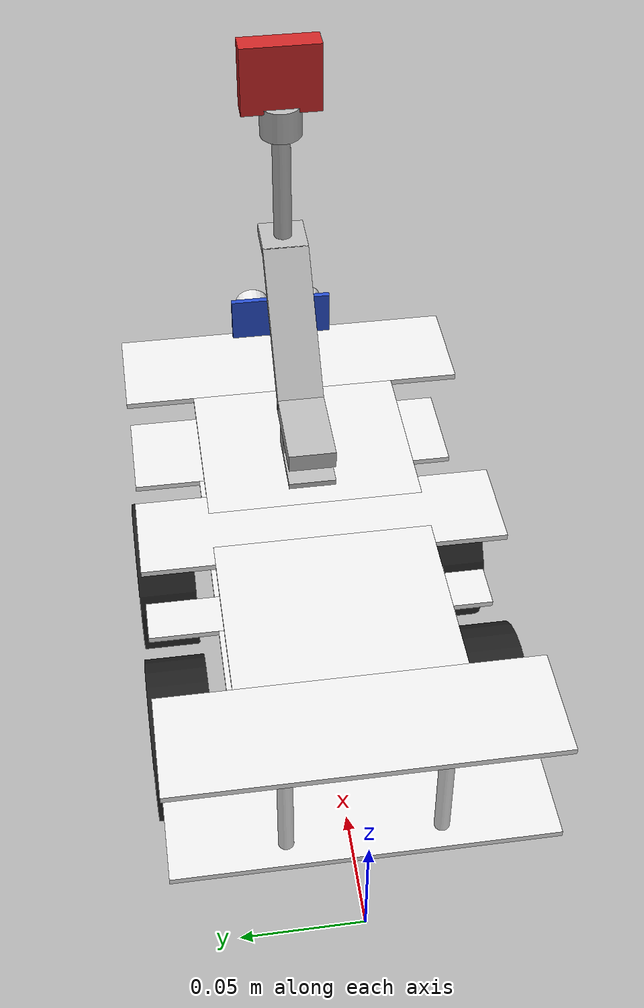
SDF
<sdf version='1.7'>
  <model name='robot'>
    <link name='base_link'>
      <inertial>
        <pose>0.156535 0 0.056461 0 -0 0</pose>
        <mass>0.338532</mass>
        <inertia>
          <ixx>0.00194493</ixx>
          <ixy>-8.77038e-21</ixy>
          <ixz>-5.27826e-05</ixz>
          <iyy>0.00285547</iyy>
          <iyz>5.00449e-21</iyz>
          <izz>0.00153438</izz>
        </inertia>
      </inertial>
      <collision name='base_link_fixed_joint_lump__chassis11_collision'>
        <pose>0.0225 0 0.096 0 -0 0</pose>
        <geometry>
          <box>
            <size>0.045 0.15 0.0025</size>
          </box>
        </geometry>
        <surface>
          <contact>
            <ode/>
          </contact>
          <friction>
            <ode/>
          </friction>
        </surface>
      </collision>
      <collision name='base_link_fixed_joint_lump__chassis1_collision_1'>
        <pose>0.0225 0 0.045 0 -0 0</pose>
        <geometry>
          <box>
            <size>0.045 0.15 0.0025</size>
          </box>
        </geometry>
        <surface>
          <contact>
            <ode/>
          </contact>
          <friction>
            <ode/>
          </friction>
        </surface>
      </collision>
      <collision name='base_link_fixed_joint_lump__chassis21_collision_2'>
        <pose>0.0825 0 0.096 0 -0 0</pose>
        <geometry>
          <box>
            <size>0.075 0.09 0.0025</size>
          </box>
        </geometry>
        <surface>
          <contact>
            <ode/>
          </contact>
          <friction>
            <ode/>
          </friction>
        </surface>
      </collision>
      <collision name='base_link_fixed_joint_lump__chassis2_collision_3'>
        <pose>0.0825 0 0.045 0 -0 0</pose>
        <geometry>
          <box>
            <size>0.075 0.09 0.0025</size>
          </box>
        </geometry>
        <surface>
          <contact>
            <ode/>
          </contact>
          <friction>
            <ode/>
          </friction>
        </surface>
      </collision>
      <collision name='base_link_fixed_joint_lump__chassis31_collision_4'>
        <pose>0.13 0 0.096 0 -0 0</pose>
        <geometry>
          <box>
            <size>0.04 0.15 0.0025</size>
          </box>
        </geometry>
        <surface>
          <contact>
            <ode/>
          </contact>
          <friction>
            <ode/>
          </friction>
        </surface>
      </collision>
      <collision name='base_link_fixed_joint_lump__chassis3_collision_5'>
        <pose>0.13 0 0.045 0 -0 0</pose>
        <geometry>
          <box>
            <size>0.02 0.15 0.0025</size>
          </box>
        </geometry>
        <surface>
          <contact>
            <ode/>
          </contact>
          <friction>
            <ode/>
          </friction>
        </surface>
      </collision>
      <collision name='base_link_fixed_joint_lump__batterie_collision_6'>
        <pose>0.13 0 0.05875 0 -0 0</pose>
        <geometry>
          <box>
            <size>0.1375 0.045 0.025</size>
          </box>
        </geometry>
        <surface>
          <contact>
            <ode/>
          </contact>
          <friction>
            <ode/>
          </friction>
        </surface>
      </collision>
      <collision name='base_link_fixed_joint_lump__chassis41_collision_7'>
        <pose>0.1775 0 0.096 0 -0 0</pose>
        <geometry>
          <box>
            <size>0.075 0.09 0.0025</size>
          </box>
        </geometry>
        <surface>
          <contact>
            <ode/>
          </contact>
          <friction>
            <ode/>
          </friction>
        </surface>
      </collision>
      <collision name='base_link_fixed_joint_lump__camera_link1_collision_8'>
        <pose>0.16 0 0.0985 0 -0 0</pose>
        <geometry>
          <box>
            <size>0.02 0.02 0.0025</size>
          </box>
        </geometry>
      </collision>
      <collision name='base_link_fixed_joint_lump__camera_link2_collision_9'>
        <pose>0.175 0 0.10225 0 -0 0</pose>
        <geometry>
          <box>
            <size>0.01 0.02 0.01</size>
          </box>
        </geometry>
      </collision>
      <collision name='base_link_fixed_joint_lump__camera_link3_collision_10'>
        <pose>0.17 0 0.11125 0 -0 0</pose>
        <geometry>
          <box>
            <size>0.04 0.02 0.008</size>
          </box>
        </geometry>
      </collision>
      <collision name='base_link_fixed_joint_lump__camera_link4_collision_11'>
        <pose>0.21 0 0.13575 0 0.775193 0</pose>
        <geometry>
          <box>
            <size>0.005 0.02 0.07</size>
          </box>
        </geometry>
      </collision>
      <collision name='base_link_fixed_joint_lump__camera_link5_collision_12'>
        <pose>0.2425 0 0.15995 0 -0 0</pose>
        <geometry>
          <box>
            <size>0.02 0.02 0.005</size>
          </box>
        </geometry>
      </collision>
      <collision name='base_link_fixed_joint_lump__camera_link6_collision_13'>
        <pose>0.2425 0 0.18745 0 -0 0</pose>
        <geometry>
          <cylinder>
            <length>0.05</length>
            <radius>0.004</radius>
          </cylinder>
        </geometry>
      </collision>
      <collision name='base_link_fixed_joint_lump__camera_link7_collision_14'>
        <pose>0.2425 0 0.21945 0 -0 0</pose>
        <geometry>
          <cylinder>
            <length>0.014</length>
            <radius>0.009</radius>
          </cylinder>
        </geometry>
      </collision>
      <collision name='base_link_fixed_joint_lump__camera_link8_collision_15'>
        <pose>0.2425 0 0.23945 0 -0 0</pose>
        <geometry>
          <box>
            <size>0.01 0.034 0.03</size>
          </box>
        </geometry>
        <surface>
          <contact>
            <ode/>
          </contact>
          <friction>
            <ode/>
          </friction>
        </surface>
      </collision>
      <collision name='base_link_fixed_joint_lump__chassis4_collision_16'>
        <pose>0.1775 0 0.045 0 -0 0</pose>
        <geometry>
          <box>
            <size>0.075 0.09 0.0025</size>
          </box>
        </geometry>
        <surface>
          <contact>
            <ode/>
          </contact>
          <friction>
            <ode/>
          </friction>
        </surface>
      </collision>
      <collision name='base_link_fixed_joint_lump__caster_wheel1_collision_17'>
        <pose>0.1775 0.065 0.025 -1.5708 0 0</pose>
        <geometry>
          <cylinder>
            <length>0.025</length>
            <radius>0.0335</radius>
          </cylinder>
        </geometry>
        <surface>
          <contact>
            <ode/>
          </contact>
          <friction>
            <ode>
              <mu>1e-06</mu>
              <mu2>1e-06</mu2>
            </ode>
          </friction>
        </surface>
      </collision>
      <collision name='base_link_fixed_joint_lump__caster_wheel2_collision_18'>
        <pose>0.1775 -0.065 0.025 1.5708 -0 0</pose>
        <geometry>
          <cylinder>
            <length>0.025</length>
            <radius>0.0335</radius>
          </cylinder>
        </geometry>
        <surface>
          <contact>
            <ode/>
          </contact>
          <friction>
            <ode>
              <mu>1e-06</mu>
              <mu2>1e-06</mu2>
            </ode>
          </friction>
        </surface>
      </collision>
      <collision name='base_link_fixed_joint_lump__chassis51_collision_19'>
        <pose>0.2375 0 0.096 0 -0 0</pose>
        <geometry>
          <box>
            <size>0.045 0.15 0.0025</size>
          </box>
        </geometry>
        <surface>
          <contact>
            <ode/>
          </contact>
          <friction>
            <ode/>
          </friction>
        </surface>
      </collision>
      <collision name='base_link_fixed_joint_lump__supprot_ultr_collision_20'>
        <pose>0.2575 0 0.10665 0 -0 0</pose>
        <geometry>
          <box>
            <size>0.0025 0.0457 0.0213</size>
          </box>
        </geometry>
        <surface>
          <contact>
            <ode/>
          </contact>
          <friction>
            <ode/>
          </friction>
        </surface>
      </collision>
      <collision name='base_link_fixed_joint_lump__supprot_echo_collision_21'>
        <pose>0.2635 -0.01235 0.10665 0 1.5708 0</pose>
        <geometry>
          <cylinder>
            <length>0.012</length>
            <radius>0.008</radius>
          </cylinder>
        </geometry>
        <surface>
          <contact>
            <ode/>
          </contact>
          <friction>
            <ode/>
          </friction>
        </surface>
      </collision>
      <collision name='base_link_fixed_joint_lump__supprot_trigger_collision_22'>
        <pose>0.2635 0.01235 0.10665 0 1.5708 0</pose>
        <geometry>
          <cylinder>
            <length>0.012</length>
            <radius>0.008</radius>
          </cylinder>
        </geometry>
        <surface>
          <contact>
            <ode/>
          </contact>
          <friction>
            <ode/>
          </friction>
        </surface>
      </collision>
      <collision name='base_link_fixed_joint_lump__chassis5_collision_23'>
        <pose>0.2375 0 0.045 0 -0 0</pose>
        <geometry>
          <box>
            <size>0.045 0.15 0.0025</size>
          </box>
        </geometry>
        <surface>
          <contact>
            <ode/>
          </contact>
          <friction>
            <ode/>
          </friction>
        </surface>
      </collision>
      <collision name='base_link_fixed_joint_lump__cylindre3_collision_24'>
        <pose>0.25 -0.03 0.07 0 -0 0</pose>
        <geometry>
          <cylinder>
            <length>0.05</length>
            <radius>0.003</radius>
          </cylinder>
        </geometry>
        <surface>
          <contact>
            <ode/>
          </contact>
          <friction>
            <ode/>
          </friction>
        </surface>
      </collision>
      <collision name='base_link_fixed_joint_lump__cylindre4_collision_25'>
        <pose>0.25 0.03 0.07 0 -0 0</pose>
        <geometry>
          <cylinder>
            <length>0.05</length>
            <radius>0.003</radius>
          </cylinder>
        </geometry>
        <surface>
          <contact>
            <ode/>
          </contact>
          <friction>
            <ode/>
          </friction>
        </surface>
      </collision>
      <collision name='base_link_fixed_joint_lump__cylindre1_collision_26'>
        <pose>0.01 0.03 0.07 0 -0 0</pose>
        <geometry>
          <cylinder>
            <length>0.05</length>
            <radius>0.003</radius>
          </cylinder>
        </geometry>
        <surface>
          <contact>
            <ode/>
          </contact>
          <friction>
            <ode/>
          </friction>
        </surface>
      </collision>
      <collision name='base_link_fixed_joint_lump__cylindre2_collision_27'>
        <pose>0.01 -0.03 0.07 0 -0 0</pose>
        <geometry>
          <cylinder>
            <length>0.05</length>
            <radius>0.003</radius>
          </cylinder>
        </geometry>
        <surface>
          <contact>
            <ode/>
          </contact>
          <friction>
            <ode/>
          </friction>
        </surface>
      </collision>
      <visual name='base_link_fixed_joint_lump__chassis11_visual'>
        <pose>0.0225 0 0.096 0 -0 0</pose>
        <geometry>
          <box>
            <size>0.045 0.15 0.0025</size>
          </box>
        </geometry>
        <material>
          <script>
            <name>Gazebo/White</name>
            <uri>file://media/materials/scripts/gazebo.material</uri>
          </script>
        </material>
      </visual>
      <visual name='base_link_fixed_joint_lump__chassis1_visual_1'>
        <pose>0.0225 0 0.045 0 -0 0</pose>
        <geometry>
          <box>
            <size>0.045 0.15 0.0025</size>
          </box>
        </geometry>
        <material>
          <script>
            <name>Gazebo/White</name>
            <uri>file://media/materials/scripts/gazebo.material</uri>
          </script>
        </material>
      </visual>
      <visual name='base_link_fixed_joint_lump__chassis21_visual_2'>
        <pose>0.0825 0 0.096 0 -0 0</pose>
        <geometry>
          <box>
            <size>0.075 0.09 0.0025</size>
          </box>
        </geometry>
        <material>
          <script>
            <name>Gazebo/White</name>
            <uri>file://media/materials/scripts/gazebo.material</uri>
          </script>
        </material>
      </visual>
      <visual name='base_link_fixed_joint_lump__chassis2_visual_3'>
        <pose>0.0825 0 0.045 0 -0 0</pose>
        <geometry>
          <box>
            <size>0.075 0.09 0.0025</size>
          </box>
        </geometry>
        <material>
          <script>
            <name>Gazebo/White</name>
            <uri>file://media/materials/scripts/gazebo.material</uri>
          </script>
        </material>
      </visual>
      <visual name='base_link_fixed_joint_lump__chassis31_visual_4'>
        <pose>0.13 0 0.096 0 -0 0</pose>
        <geometry>
          <box>
            <size>0.04 0.15 0.0025</size>
          </box>
        </geometry>
        <material>
          <script>
            <name>Gazebo/White</name>
            <uri>file://media/materials/scripts/gazebo.material</uri>
          </script>
        </material>
      </visual>
      <visual name='base_link_fixed_joint_lump__chassis3_visual_5'>
        <pose>0.13 0 0.045 0 -0 0</pose>
        <geometry>
          <box>
            <size>0.02 0.15 0.0025</size>
          </box>
        </geometry>
        <material>
          <script>
            <name>Gazebo/White</name>
            <uri>file://media/materials/scripts/gazebo.material</uri>
          </script>
        </material>
      </visual>
      <visual name='base_link_fixed_joint_lump__batterie_visual_6'>
        <pose>0.13 0 0.05875 0 -0 0</pose>
        <geometry>
          <box>
            <size>0.1375 0.045 0.025</size>
          </box>
        </geometry>
        <material>
          <script>
            <name>Gazebo/Black</name>
            <uri>file://media/materials/scripts/gazebo.material</uri>
          </script>
        </material>
      </visual>
      <visual name='base_link_fixed_joint_lump__chassis41_visual_7'>
        <pose>0.1775 0 0.096 0 -0 0</pose>
        <geometry>
          <box>
            <size>0.075 0.09 0.0025</size>
          </box>
        </geometry>
        <material>
          <script>
            <name>Gazebo/White</name>
            <uri>file://media/materials/scripts/gazebo.material</uri>
          </script>
        </material>
      </visual>
      <visual name='base_link_fixed_joint_lump__camera_link1_visual_8'>
        <pose>0.16 0 0.0985 0 -0 0</pose>
        <geometry>
          <box>
            <size>0.02 0.02 0.0025</size>
          </box>
        </geometry>
      </visual>
      <visual name='base_link_fixed_joint_lump__camera_link2_visual_9'>
        <pose>0.175 0 0.10225 0 -0 0</pose>
        <geometry>
          <box>
            <size>0.01 0.02 0.01</size>
          </box>
        </geometry>
      </visual>
      <visual name='base_link_fixed_joint_lump__camera_link3_visual_10'>
        <pose>0.17 0 0.11125 0 -0 0</pose>
        <geometry>
          <box>
            <size>0.04 0.02 0.008</size>
          </box>
        </geometry>
      </visual>
      <visual name='base_link_fixed_joint_lump__camera_link4_visual_11'>
        <pose>0.21 0 0.13575 0 0.775193 0</pose>
        <geometry>
          <box>
            <size>0.005 0.02 0.07</size>
          </box>
        </geometry>
      </visual>
      <visual name='base_link_fixed_joint_lump__camera_link5_visual_12'>
        <pose>0.2425 0 0.15995 0 -0 0</pose>
        <geometry>
          <box>
            <size>0.02 0.02 0.005</size>
          </box>
        </geometry>
      </visual>
      <visual name='base_link_fixed_joint_lump__camera_link6_visual_13'>
        <pose>0.2425 0 0.18745 0 -0 0</pose>
        <geometry>
          <cylinder>
            <length>0.05</length>
            <radius>0.004</radius>
          </cylinder>
        </geometry>
      </visual>
      <visual name='base_link_fixed_joint_lump__camera_link7_visual_14'>
        <pose>0.2425 0 0.21945 0 -0 0</pose>
        <geometry>
          <cylinder>
            <length>0.014</length>
            <radius>0.009</radius>
          </cylinder>
        </geometry>
      </visual>
      <visual name='base_link_fixed_joint_lump__camera_link8_visual_15'>
        <pose>0.2425 0 0.23945 0 -0 0</pose>
        <geometry>
          <box>
            <size>0.01 0.034 0.03</size>
          </box>
        </geometry>
        <material>
          <script>
            <name>Gazebo/Red</name>
            <uri>file://media/materials/scripts/gazebo.material</uri>
          </script>
        </material>
      </visual>
      <visual name='base_link_fixed_joint_lump__chassis4_visual_16'>
        <pose>0.1775 0 0.045 0 -0 0</pose>
        <geometry>
          <box>
            <size>0.075 0.09 0.0025</size>
          </box>
        </geometry>
        <material>
          <script>
            <name>Gazebo/White</name>
            <uri>file://media/materials/scripts/gazebo.material</uri>
          </script>
        </material>
      </visual>
      <visual name='base_link_fixed_joint_lump__caster_wheel1_visual_17'>
        <pose>0.1775 0.065 0.025 -1.5708 0 0</pose>
        <geometry>
          <cylinder>
            <length>0.025</length>
            <radius>0.0335</radius>
          </cylinder>
        </geometry>
        <material>
          <script>
            <name>Gazebo/Black</name>
            <uri>file://media/materials/scripts/gazebo.material</uri>
          </script>
        </material>
      </visual>
      <visual name='base_link_fixed_joint_lump__caster_wheel2_visual_18'>
        <pose>0.1775 -0.065 0.025 1.5708 -0 0</pose>
        <geometry>
          <cylinder>
            <length>0.025</length>
            <radius>0.0335</radius>
          </cylinder>
        </geometry>
        <material>
          <script>
            <name>Gazebo/Black</name>
            <uri>file://media/materials/scripts/gazebo.material</uri>
          </script>
        </material>
      </visual>
      <visual name='base_link_fixed_joint_lump__chassis51_visual_19'>
        <pose>0.2375 0 0.096 0 -0 0</pose>
        <geometry>
          <box>
            <size>0.045 0.15 0.0025</size>
          </box>
        </geometry>
        <material>
          <script>
            <name>Gazebo/White</name>
            <uri>file://media/materials/scripts/gazebo.material</uri>
          </script>
        </material>
      </visual>
      <visual name='base_link_fixed_joint_lump__supprot_ultr_visual_20'>
        <pose>0.2575 0 0.10665 0 -0 0</pose>
        <geometry>
          <box>
            <size>0.0025 0.0457 0.0213</size>
          </box>
        </geometry>
        <material>
          <script>
            <name>Gazebo/Blue</name>
            <uri>file://media/materials/scripts/gazebo.material</uri>
          </script>
        </material>
      </visual>
      <visual name='base_link_fixed_joint_lump__supprot_echo_visual_21'>
        <pose>0.2635 -0.01235 0.10665 0 1.5708 0</pose>
        <geometry>
          <cylinder>
            <length>0.012</length>
            <radius>0.008</radius>
          </cylinder>
        </geometry>
        <material>
          <script>
            <name>Gazebo/White</name>
            <uri>file://media/materials/scripts/gazebo.material</uri>
          </script>
        </material>
      </visual>
      <visual name='base_link_fixed_joint_lump__supprot_trigger_visual_22'>
        <pose>0.2635 0.01235 0.10665 0 1.5708 0</pose>
        <geometry>
          <cylinder>
            <length>0.012</length>
            <radius>0.008</radius>
          </cylinder>
        </geometry>
        <material>
          <script>
            <name>Gazebo/White</name>
            <uri>file://media/materials/scripts/gazebo.material</uri>
          </script>
        </material>
      </visual>
      <visual name='base_link_fixed_joint_lump__chassis5_visual_23'>
        <pose>0.2375 0 0.045 0 -0 0</pose>
        <geometry>
          <box>
            <size>0.045 0.15 0.0025</size>
          </box>
        </geometry>
        <material>
          <script>
            <name>Gazebo/White</name>
            <uri>file://media/materials/scripts/gazebo.material</uri>
          </script>
        </material>
      </visual>
      <visual name='base_link_fixed_joint_lump__cylindre3_visual_24'>
        <pose>0.25 -0.03 0.07 0 -0 0</pose>
        <geometry>
          <cylinder>
            <length>0.05</length>
            <radius>0.003</radius>
          </cylinder>
        </geometry>
        <material>
          <script>
            <name>Gazebo/White</name>
            <uri>file://media/materials/scripts/gazebo.material</uri>
          </script>
        </material>
      </visual>
      <visual name='base_link_fixed_joint_lump__cylindre4_visual_25'>
        <pose>0.25 0.03 0.07 0 -0 0</pose>
        <geometry>
          <cylinder>
            <length>0.05</length>
            <radius>0.003</radius>
          </cylinder>
        </geometry>
        <material>
          <script>
            <name>Gazebo/White</name>
            <uri>file://media/materials/scripts/gazebo.material</uri>
          </script>
        </material>
      </visual>
      <visual name='base_link_fixed_joint_lump__cylindre1_visual_26'>
        <pose>0.01 0.03 0.07 0 -0 0</pose>
        <geometry>
          <cylinder>
            <length>0.05</length>
            <radius>0.003</radius>
          </cylinder>
        </geometry>
        <material>
          <script>
            <name>Gazebo/White</name>
            <uri>file://media/materials/scripts/gazebo.material</uri>
          </script>
        </material>
      </visual>
      <visual name='base_link_fixed_joint_lump__cylindre2_visual_27'>
        <pose>0.01 -0.03 0.07 0 -0 0</pose>
        <geometry>
          <cylinder>
            <length>0.05</length>
            <radius>0.003</radius>
          </cylinder>
        </geometry>
        <material>
          <script>
            <name>Gazebo/White</name>
            <uri>file://media/materials/scripts/gazebo.material</uri>
          </script>
        </material>
      </visual>
      <sensor name='camera' type='camera'>
        <visualize>1</visualize>
        <update_rate>10</update_rate>
        <camera>
          <horizontal_fov>1.1519</horizontal_fov>
          <image>
            <format>R8G8B8</format>
            <width>640</width>
            <height>480</height>
          </image>
          <clip>
            <near>0.03</near>
            <far>8</far>
          </clip>
        </camera>
        <plugin name='camera_controller' filename='libgazebo_ros_camera.so'>
          <frame_name>camera_link_optical</frame_name>
        </plugin>
        <pose>0.2425 0 0.23945 0 -0 0</pose>
      </sensor>
      <sensor name='ultrasonic_1' type='ray'>
        <always_on>1</always_on>
        <visualize>1</visualize>
        <update_rate>5</update_rate>
        <ray>
          <scan>
            <horizontal>
              <samples>5</samples>
              <resolution>1</resolution>
              <min_angle>-0.12</min_angle>
              <max_angle>0.12</max_angle>
            </horizontal>
            <vertical>
              <samples>5</samples>
              <resolution>1</resolution>
              <min_angle>-0.01</min_angle>
              <max_angle>0.01</max_angle>
            </vertical>
          </scan>
          <range>
            <min>0.02</min>
            <max>4</max>
            <resolution>0.01</resolution>
          </range>
          <noise>
            <type>gaussian</type>
            <mean>0</mean>
            <stddev>0.01</stddev>
          </noise>
        </ray>
        <plugin name='ultrasonic_sensor_1' filename='libgazebo_ros_ray_sensor.so'>
          <ros>
            <remapping>~/out:=ultrasonic_sensor_1</remapping>
          </ros>
          <output_type>sensor_msgs/Range</output_type>
          <radiation_type>ultrasound</radiation_type>
          <frame_name>ultrasonic_link_optical</frame_name>
        </plugin>
        <pose>0.2575 0 0.10665 0 -0 0</pose>
      </sensor>
    </link>
    <joint name='rear_left_wheel_joint' type='revolute'>
      <pose relative_to='base_link'>0.0825 0.065 0.025 -1.5708 0 0</pose>
      <parent>base_link</parent>
      <child>rear_left</child>
      <axis>
        <xyz>0 0 1</xyz>
        <limit>
          <lower>-1e+16</lower>
          <upper>1e+16</upper>
        </limit>
        <dynamics>
          <spring_reference>0</spring_reference>
          <spring_stiffness>0</spring_stiffness>
        </dynamics>
      </axis>
    </joint>
    <link name='rear_left'>
      <pose relative_to='rear_left_wheel_joint'>0 0 0 0 -0 0</pose>
      <inertial>
        <pose>0 0.065 -0.02 0 -0 0</pose>
        <mass>0.0440707</mass>
        <inertia>
          <ixx>1.46599e-05</ixx>
          <ixy>0</ixy>
          <ixz>0</ixz>
          <iyy>1.46599e-05</iyy>
          <iyz>0</iyz>
          <izz>2.47291e-05</izz>
        </inertia>
      </inertial>
      <collision name='rear_left_collision'>
        <pose>0 0 0 0 -0 0</pose>
        <geometry>
          <cylinder>
            <length>0.025</length>
            <radius>0.0335</radius>
          </cylinder>
        </geometry>
        <surface>
          <contact>
            <ode/>
          </contact>
          <friction>
            <ode>
              <mu>10000</mu>
              <mu2>10000</mu2>
            </ode>
          </friction>
        </surface>
      </collision>
      <visual name='rear_left_visual'>
        <pose>0 0 0 0 -0 0</pose>
        <geometry>
          <cylinder>
            <length>0.025</length>
            <radius>0.0335</radius>
          </cylinder>
        </geometry>
        <material>
          <script>
            <name>Gazebo/Black</name>
            <uri>file://media/materials/scripts/gazebo.material</uri>
          </script>
        </material>
      </visual>
    </link>
    <joint name='rear_right_wheel_joint' type='revolute'>
      <pose relative_to='base_link'>0.0825 -0.065 0.025 1.5708 -0 0</pose>
      <parent>base_link</parent>
      <child>rear_right</child>
      <axis>
        <xyz>0 0 -1</xyz>
        <limit>
          <lower>-1e+16</lower>
          <upper>1e+16</upper>
        </limit>
        <dynamics>
          <spring_reference>0</spring_reference>
          <spring_stiffness>0</spring_stiffness>
        </dynamics>
      </axis>
    </joint>
    <link name='rear_right'>
      <pose relative_to='rear_right_wheel_joint'>0 0 0 0 -0 0</pose>
      <inertial>
        <pose>0 -0.065 -0.02 0 -0 0</pose>
        <mass>0.0440707</mass>
        <inertia>
          <ixx>1.46599e-05</ixx>
          <ixy>0</ixy>
          <ixz>0</ixz>
          <iyy>1.46599e-05</iyy>
          <iyz>0</iyz>
          <izz>2.47291e-05</izz>
        </inertia>
      </inertial>
      <collision name='rear_right_collision'>
        <pose>0 0 0 0 -0 0</pose>
        <geometry>
          <cylinder>
            <length>0.025</length>
            <radius>0.0335</radius>
          </cylinder>
        </geometry>
        <surface>
          <contact>
            <ode/>
          </contact>
          <friction>
            <ode>
              <mu>10000</mu>
              <mu2>10000</mu2>
            </ode>
          </friction>
        </surface>
      </collision>
      <visual name='rear_right_visual'>
        <pose>0 0 0 0 -0 0</pose>
        <geometry>
          <cylinder>
            <length>0.025</length>
            <radius>0.0335</radius>
          </cylinder>
        </geometry>
        <material>
          <script>
            <name>Gazebo/Black</name>
            <uri>file://media/materials/scripts/gazebo.material</uri>
          </script>
        </material>
      </visual>
    </link>
    <static>0</static>
    <plugin name='diff_drive' filename='libgazebo_ros_diff_drive.so'>
      <left_joint>rear_left_wheel_joint</left_joint>
      <right_joint>rear_right_wheel_joint</right_joint>
      <wheel_separation>0.12</wheel_separation>
      <wheel_diameter>0.067</wheel_diameter>
      <max_wheel_torque>200</max_wheel_torque>
      <max_wheel_acceleration>10.0</max_wheel_acceleration>
      <odometry_frame>odom</odometry_frame>
      <robot_base_frame>base_link</robot_base_frame>
      <publish_odom>1</publish_odom>
      <publish_odom_tf>1</publish_odom_tf>
      <publish_wheel_tf>1</publish_wheel_tf>
    </plugin>
  </model>
</sdf>
